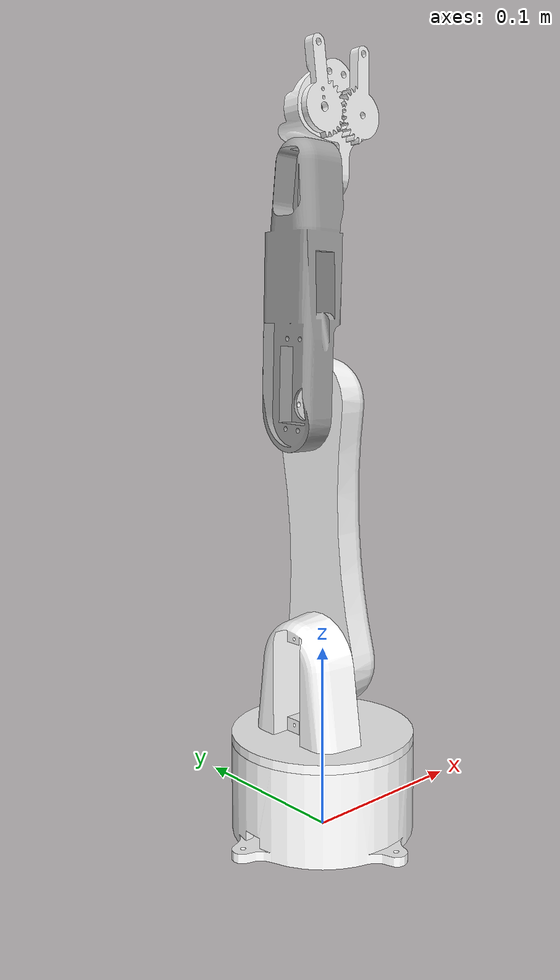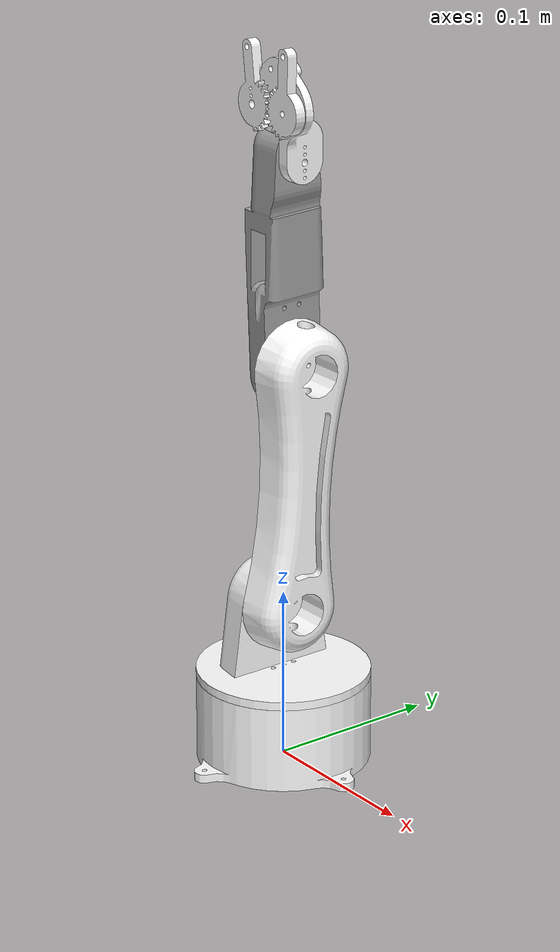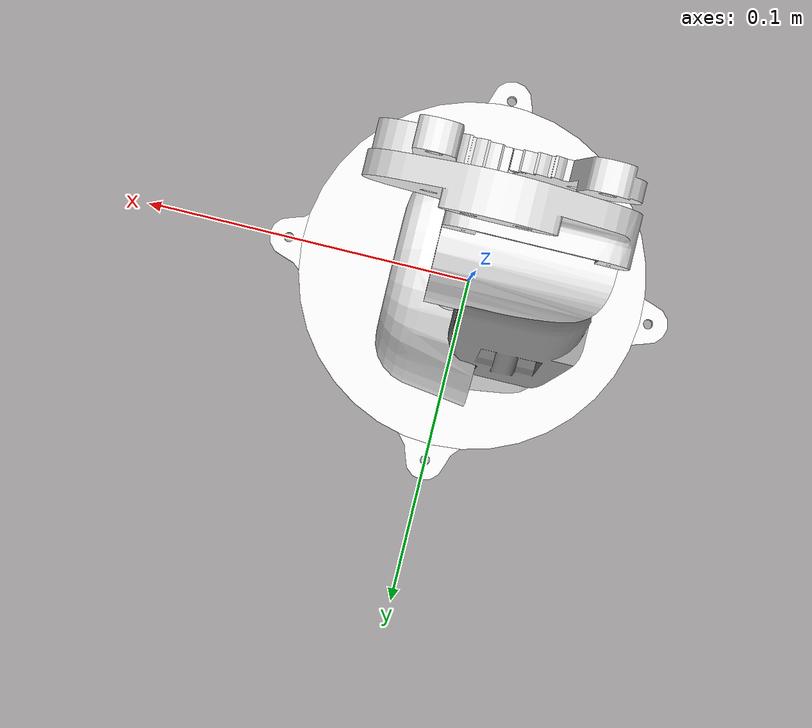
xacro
<?xml version="1.0"?>
<robot xmlns:xacro="http://www.ros.org/wiki/xacro" name="my_arm">
    <xacro:arg name="initial_positions_file" default="initial_positions.yaml" />

    <!-- Import my_arm urdf file -->
    <xacro:include filename="$(find robot_arm)/urdf/robot_arm.urdf.xacro" />

    <!-- Import control_xacro -->
    <xacro:include filename="my_arm.ros2_control.xacro" />

    <xacro:my_arm_ros2_control name="FakeSystem" initial_positions_file="$(arg initial_positions_file)"/>

</robot>

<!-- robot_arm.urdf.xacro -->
<robot name="my_arm" xmlns:xacro="http://www.ros.org/wiki/xacro">

    <xacro:include filename="robot_arm.urdf" />
    <xacro:include filename="robot_arm.ros2_control.xacro" />

</robot>

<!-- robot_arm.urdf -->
<robot xmlns:xacro="http://www.ros.org/wiki/xacro">

  <link
    name="base_link">
    <inertial>
      <origin
        xyz="0.00088931 1.518E-10 0.022426"
        rpy="0 0 0" />
      <mass
        value="0.093992" />
      <inertia
        ixx="0.00011412"
        ixy="1.977E-13"
        ixz="-1.3528E-06"
        iyy="0.00012443"
        iyz="1.9115E-13"
        izz="0.00019777" />
    </inertial>
    <visual>
      <origin
        xyz="0 0 0"
        rpy="0 0 0" />
      <geometry>
        <mesh
          filename="package://robot_arm/meshes/base_link.STL" />
      </geometry>
      <material
        name="">
        <color
          rgba="1 1 1 1" />
      </material>
    </visual>
    <collision>
      <origin
        xyz="0 0 0"
        rpy="0 0 0" />
      <geometry>
        <mesh
          filename="package://robot_arm/meshes/base_link.STL" />
      </geometry>
    </collision>
  </link>

   <link
    name="rotating_waste_link">
    <inertial>
      <origin
        xyz="-0.0070576 -1.0381E-07 0.019423"
        rpy="0 0 0" />
      <mass
        value="0.091516" />
      <inertia
        ixx="7.8818E-05"
        ixy="-2.8268E-10"
        ixz="8.1273E-06"
        iyy="6.8276E-05"
        iyz="6.7942E-11"
        izz="7.2109E-05" />
    </inertial>
    <visual>
      <origin
        xyz="0 0 0"
        rpy="0 0 0" />
      <geometry>
        <mesh
          filename="package://robot_arm/meshes/rotating_waste_link.STL" />
      </geometry>
      <material
        name="">
        <color
          rgba="1 1 1 1" />
      </material>
    </visual>
    <collision>
      <origin
        xyz="0 0 0"
        rpy="0 0 0" />
      <geometry>
        <mesh
          filename="package://robot_arm/meshes/rotating_waste_link.STL" />
      </geometry>
    </collision>
  </link>

  <joint
    name="base_rotating_waste_joint"
    type="revolute">
    <origin
      xyz="0 0 0.05"
      rpy="0 0 0" />
    <parent
      link="base_link" />
    <child
      link="rotating_waste_link" />
    <axis
      xyz="0 0 1" />
    <limit
      lower="0"
      upper="3.14"
      effort="200"
      velocity="2" />
  </joint>

   <link
    name="arm1_link">
    <inertial>
      <origin
        xyz="0.00631836393428441 0.00457630250829717 0.0698502612146547"
        rpy="0 0 0" />
      <mass
        value="0.140952853784722" />
      <inertia
        ixx="0.000440416626025168"
        ixy="-1.98721405209177E-11"
        ixz="-2.90833471708738E-12"
        iyy="0.000419628031992997"
        iyz="-2.54311534936983E-05"
        izz="3.31281769441693E-05" />
    </inertial>
    <visual>
      <origin
        xyz="0 0 0"
        rpy="0 0 0" />
      <geometry>
        <mesh
          filename="package://robot_arm/meshes/arm1_link.STL" />
      </geometry>
      <material
        name="">
        <color
          rgba="1 1 1 1" />
      </material>
    </visual>
    <collision>
      <origin
        xyz="0 0 0"
        rpy="0 0 0" />
      <geometry>
        <mesh
          filename="package://robot_arm/meshes/arm1_link.STL" />
      </geometry>
    </collision>
  </link>

  <joint
    name="rotating_waste_arm1_joint"
    type="revolute">
    <origin
      xyz="0.0015 0 0.04355"
      rpy="0 0 0" />
    <parent
      link="rotating_waste_link" />
    <child
      link="arm1_link" />
    <axis
      xyz="-1 0 0" />
    <limit
      lower="-1.57"
      upper="1.57"
      effort="300"
      velocity="2" />
  </joint>

  <link
    name="arm2_link">
    <inertial>
      <origin
        xyz="-0.00880357814701982 -0.00216767735851138 0.0625599808566242"
        rpy="0 0 0" />
      <mass
        value="0.0679899973206678" />
      <inertia
        ixx="6.08668610842258E-05"
        ixy="3.18721361237652E-08"
        ixz="-7.99265437177903E-07"
        iyy="5.65315919976104E-05"
        iyz="1.72686317681534E-06"
        izz="1.18089388202385E-05" />
    </inertial>
    <visual>
      <origin
        xyz="0 0 0"
        rpy="0 0 0" />
      <geometry>
        <mesh
          filename="package://robot_arm/meshes/arm2_link.STL" />
      </geometry>
      <material
        name="">
        <color
          rgba="0.627450980392157 0.627450980392157 0.627450980392157 1" />
      </material>
    </visual>
    <collision>
      <origin
        xyz="0 0 0"
        rpy="0 0 0" />
      <geometry>
        <mesh
          filename="package://robot_arm/meshes/arm2_link.STL" />
      </geometry>
    </collision>
  </link>
  <joint
    name="arm1_arm2_joint"
    type="revolute">
    <origin
      xyz="0 0.0091527 0.1397"
      rpy="0 0 0" />
    <parent
      link="arm1_link" />
    <child
      link="arm2_link" />
    <axis
      xyz="-1 0 0" />
    <limit
      lower="-0.972"
      upper="2.172"
      effort="300"
      velocity="2" />
  </joint>

  <link
    name="gripper_base_link">
    <inertial>
      <origin
        xyz="-0.0086045 -0.0047925 0.024485"
        rpy="0 0 0" />
      <mass
        value="0.015888" />
      <inertia
        ixx="4.9763E-06"
        ixy="-1.0216E-08"
        ixz="5.5705E-07"
        iyy="6.3729E-06"
        iyz="8.4747E-07"
        izz="2.6359E-06" />
    </inertial>
    <visual>
      <origin
        xyz="0 0 0"
        rpy="0 0 0" />
      <geometry>
        <mesh
          filename="package://robot_arm/meshes/gripper_base_link.STL" />
      </geometry>
      <material
        name="">
        <color
          rgba="1 1 1 1" />
      </material>
    </visual>
    <collision>
      <origin
        xyz="0 0 0"
        rpy="0 0 0" />
      <geometry>
        <mesh
          filename="package://robot_arm/meshes/gripper_base_link.STL" />
      </geometry>
    </collision>
  </link>
  <joint
    name="arm2_gripper_base_joint"
    type="revolute">
    <origin
      xyz="0.011 -0.0039062 0.11959"
      rpy="0 0 0" />
    <parent
      link="arm2_link" />
    <child
      link="gripper_base_link" />
    <axis
      xyz="-1 0 0" />
    <limit
      lower="-1.57"
      upper="1.57"
      effort="200"
      velocity="2" />
  </joint>

  <link
    name="left_gear_link">
    <inertial>
      <origin
        xyz="-0.000416201264684057 0.00225628206764544 0.00726342155223458"
        rpy="0 0 0" />
      <mass
        value="0.00288097977011737" />
      <inertia
        ixx="4.58702443643956E-07"
        ixy="2.17136633214979E-09"
        ixz="6.07780555610504E-08"
        iyy="5.52241597953508E-07"
        iyz="-1.31901969283621E-08"
        izz="1.04781150402433E-07" />
    </inertial>
    <visual>
      <origin
        xyz="0 0 0"
        rpy="0 0 0" />
      <geometry>
        <mesh
          filename="package://robot_arm/meshes/left_gear_link.STL" />
      </geometry>
      <material
        name="">
        <color
          rgba="1 1 1 1" />
      </material>
    </visual>
    <collision>
      <origin
        xyz="0 0 0"
        rpy="0 0 0" />
      <geometry>
        <mesh
          filename="package://robot_arm/meshes/left_gear_link.STL" />
      </geometry>
    </collision>
  </link>
  <joint
    name="gripper_base_left_gear_joint"
    type="revolute">
    <origin
      xyz="-0.02295 -0.018135 0.0302"
      rpy="0 0 0" />
    <parent
      link="gripper_base_link" />
    <child
      link="left_gear_link" />
    <axis
      xyz="0 1 0" />
    <limit
      lower="-1.18"
      upper="0"
      effort="200"
      velocity="2" />
  </joint>

  <link
    name="right_gear_link">
    <inertial>
      <origin
        xyz="-0.000511366230434651 0.00299999999999997 0.00558778456902781"
        rpy="0 0 0" />
      <mass
        value="0.00404166832548351" />
      <inertia
        ixx="5.63449978901378E-07"
        ixy="2.12482258863504E-23"
        ixz="-2.09627300327499E-08"
        iyy="6.84276691264749E-07"
        iyz="1.73661663718213E-23"
        izz="1.45076722316272E-07" />
    </inertial>
    <visual>
      <origin
        xyz="0 0 0"
        rpy="0 0 0" />
      <geometry>
        <mesh
          filename="package://robot_arm/meshes/right_gear_link.STL" />
      </geometry>
      <material
        name="">
        <color
          rgba="1 1 1 1" />
      </material>
    </visual>
    <collision>
      <origin
        xyz="0 0 0"
        rpy="0 0 0" />
      <geometry>
        <mesh
          filename="package://robot_arm/meshes/right_gear_link.STL" />
      </geometry>
    </collision>
  </link>
  <joint
    name="gripper_base_right_gear_joint"
    type="revolute">
    <origin
      xyz="0.00395 -0.018135 0.0302"
      rpy="0 0 0" />
    <parent
      link="gripper_base_link" />
    <child
      link="right_gear_link" />
    <axis
      xyz="0 1 0" />
    <limit
      lower="-1.57"
      upper="1.57"
      effort="200"
      velocity="2" />
    <mimic
      joint="gripper_base_left_gear_joint"
      multiplier="-1"
      offset="0" />
  </joint>

</robot>
